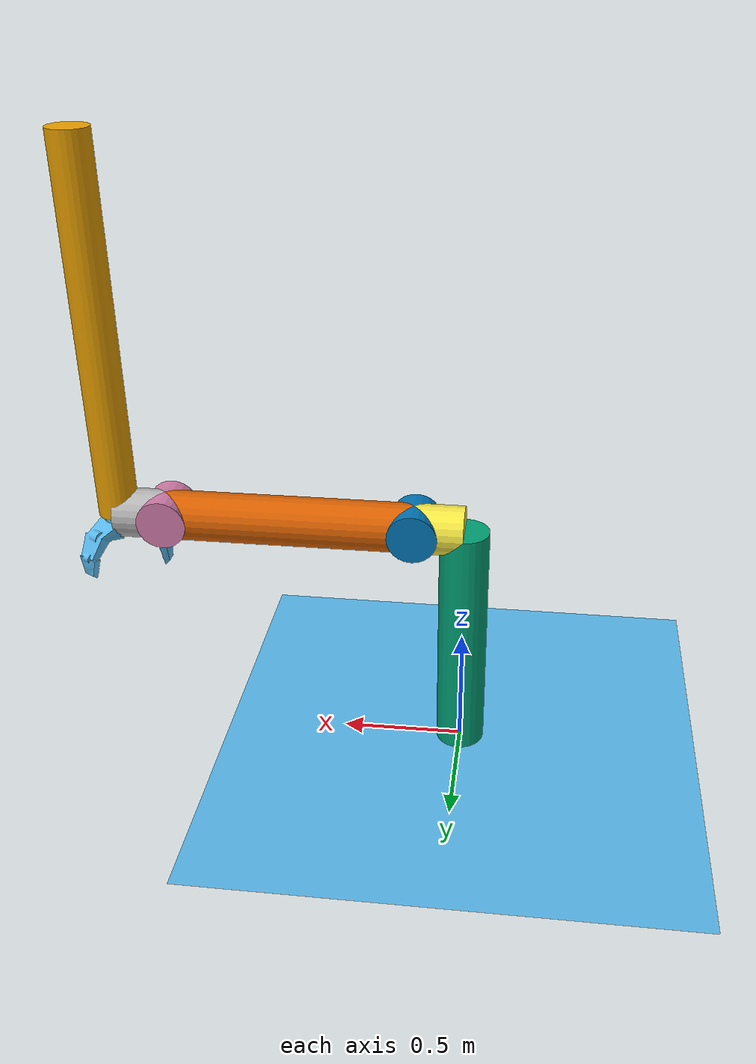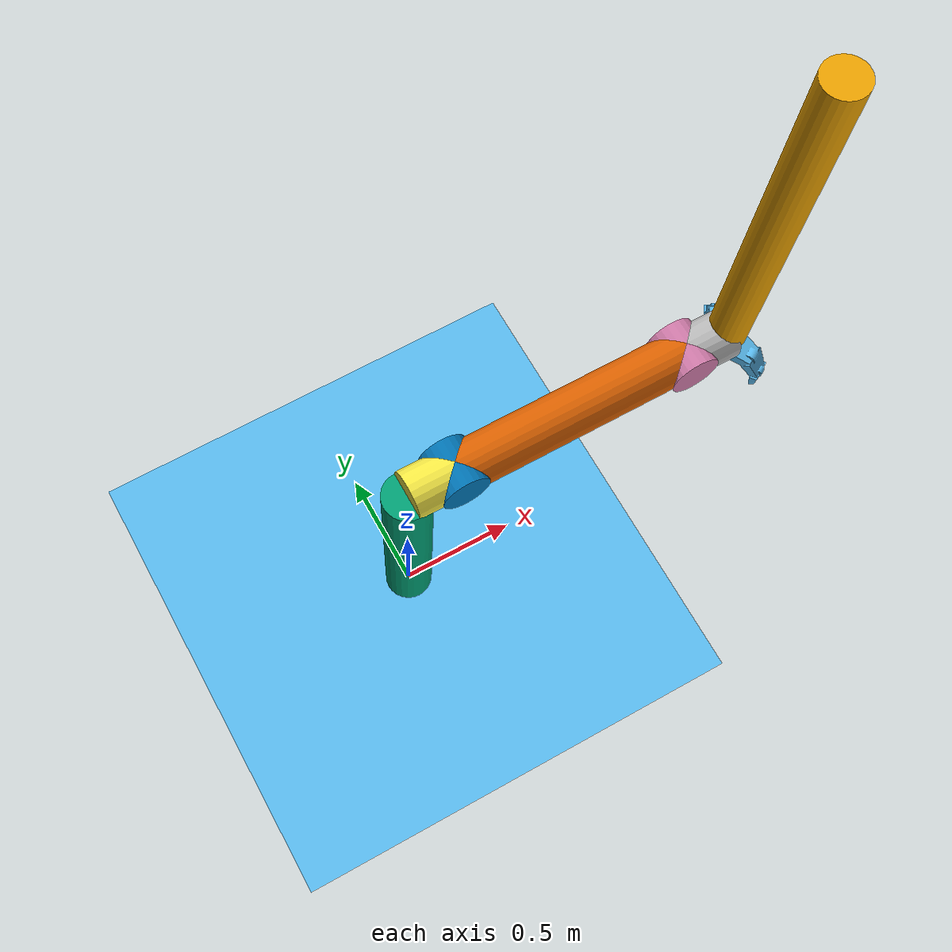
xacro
<?xml version="1.0"?>
<robot xmlns:xacro="http://www.ros.org/wiki/xacro" name="my_robot">
    <xacro:include filename="$(find project_rp)/urdf/r_link.xacro" />
    <xacro:include filename="$(find project_rp)/urdf/p_link.xacro" />
    <xacro:include filename="$(find project_rp)/urdf/f_link.xacro" />
    <xacro:include filename="$(find project_rp)/urdf/base.xacro" />
    <xacro:include filename="$(find project_rp)/urdf/claw.xacro" />
    <xacro:base name="l0" />
    <xacro:r_link prefix="l1" parent="l0" length="1.000000" radius="0.100000" joint_rpy="0 0 0" joint_xyz="0 0 0" link_rpy="0 0 0" link_xyz="0 0 0.500000"/>
    <xacro:f_link prefix="l2" parent="l1" length="0.200000" radius="0.100000" joint_xyz="0 0 0" link_rpy="0 1.570796 0" link_xyz="0.100000 0 1.000000"/>
    <xacro:r_link prefix="l3" parent="l2" length="0.2" radius="0.100000" joint_rpy="1.570796 0 0" joint_xyz="0.200000 0 1.000000" link_rpy="0 0 0" link_xyz="0 0 0.000000"/>
    <xacro:f_link prefix="l4" parent="l3" length="1.000000" radius="0.100000" joint_xyz="0 0 0" link_rpy="0 1.570796 0" link_xyz="0.500000 0 0.000000"/>
    <xacro:r_link prefix="l5" parent="l4" length="0.2" radius="0.100000" joint_rpy="0.000000 0 0" joint_xyz="1.000000 0 0.000000" link_rpy="0 0 0" link_xyz="0 0 0.000000"/>
    <xacro:f_link prefix="l6" parent="l5" length="0.200000" radius="0.100000" joint_xyz="0 0 0" link_rpy="0 1.570796 0" link_xyz="0.100000 0 0.000000"/>
    <xacro:p_link prefix="l7" parent="l6" length="1.500000" radius="0.080000" joint_rpy="1.570796 0 0" joint_xyz="0.200000 0 0.000000" link_rpy="0 0 0" link_xyz="0 0 -0.750000"/>
    <xacro:claw parent="l7" rpy="0 0 0" xyz="0.642000 0 0" scale="0.015000 0.015000 0.015000"/>
    <gazebo>
        <plugin name="gazebo_ros_control" filename="libgazebo_ros_control.so">
            <robotNamespace>/</robotNamespace>
        </plugin>
    </gazebo>
</robot>

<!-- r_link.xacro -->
<robot xmlns:xacro="http://www.ros.org/wiki/xacro" name="my_robot">

<xacro:macro name="r_link" params="prefix parent length radius joint_rpy joint_xyz link_rpy link_xyz">

    <link name="${prefix}">
        <visual>
            <origin rpy="${link_rpy}" xyz="${link_xyz}"/>
            <geometry>
                <cylinder length="${length}" radius="${radius}"/>
            </geometry>
        </visual>
        <inertial>
            <origin rpy="${link_rpy}" xyz="${link_xyz}"/>
            <mass value="1"/>
            <inertia ixx="0.06" ixy="0.0" ixz="0.0" iyy="0.06" iyz="0.0" izz="0.25"/>
        </inertial>
    </link>

    <joint name="${parent}_to_${prefix}" type="continuous">
        <axis xyz="0 0 1"/>
        <parent link="${parent}"/>
        <child link="${prefix}"/>
        <origin rpy="${joint_rpy}" xyz="${joint_xyz}"/>
        <limit effort="300" velocity="1.0"/>
        <dynamics damping="0.5" friction="0.0"/>
    </joint>

    <transmission name="${prefix}_transmission">
        <type>transmission_interface/SimpleTransmission</type>
        <actuator name="${prefix}_motor">
            <mechanicalReduction>1</mechanicalReduction>
        </actuator>
        <joint name="${parent}_to_${prefix}">
            <hardwareInterface>hardware_interface/PositionJointInterface</hardwareInterface>
        </joint>
    </transmission>

</xacro:macro>
</robot>

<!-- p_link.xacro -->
<robot xmlns:xacro="http://www.ros.org/wiki/xacro" name="my_robot">

<xacro:macro name="p_link" params="prefix parent length radius joint_rpy joint_xyz link_rpy link_xyz">

    <link name="${prefix}">
        <visual>
            <origin rpy="${link_rpy}" xyz="${link_xyz}"/>
            <geometry>
                <cylinder length="${length}" radius="${radius}"/>
            </geometry>
        </visual>
        <inertial>
            <origin rpy="${link_rpy}" xyz="${link_xyz}"/>
            <mass value="1"/>
            <inertia ixx="0.06" ixy="0.0" ixz="0.0" iyy="0.06" iyz="0.0" izz="0.25"/>
        </inertial>
    </link>

    <joint name="${parent}_to_${prefix}" type="prismatic">
        <axis xyz="0 0 1"/>
        <parent link="${parent}"/>
        <child link="${prefix}"/>
        <origin rpy="${joint_rpy}" xyz="${joint_xyz}"/> <!-- move the child_frame with respect to parent_frame -->
        <limit upper="${length}" effort="300" velocity="1.0"/>
        <dynamics damping="0.5" friction="0.0"/>
    </joint>

    <transmission name="${prefix}_transmission">
        <type>transmission_interface/SimpleTransmission</type>
        <actuator name="${prefix}_motor">
            <mechanicalReduction>1</mechanicalReduction>
        </actuator>
        <joint name="${parent}_to_${prefix}">
            <hardwareInterface>hardware_interface/PositionJointInterface</hardwareInterface>
        </joint>
    </transmission>

</xacro:macro>
</robot>

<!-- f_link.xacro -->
<robot xmlns:xacro="http://www.ros.org/wiki/xacro" name="my_robot">

<xacro:macro name="f_link" params="prefix parent length radius joint_xyz link_rpy link_xyz">

		<link name="${prefix}">
        <visual>
            <origin rpy="${link_rpy}" xyz="${link_xyz}"/>
            <geometry>
                <cylinder length="${length}" radius="${radius}"/>
            </geometry>
        </visual>
        <inertial>
            <origin rpy="${link_rpy}" xyz="${link_xyz}"/>
            <mass value="1"/>
            <inertia ixx="0.06" ixy="0.0" ixz="0.0" iyy="0.06" iyz="0.0" izz="0.25"/>
        </inertial>
    </link>

    <joint name="${parent}_to_${prefix}" type="fixed">
			<parent link="${parent}"/>
			<child link="${prefix}"/>
			<origin rpy="0 0 0" xyz="${joint_xyz}"/>
			<dynamics damping="0.5" friction="0.0"/>
		</joint>

</xacro:macro>
</robot>

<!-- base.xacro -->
<robot xmlns:xacro="http://www.ros.org/wiki/xacro" name="my_robot">

<xacro:macro name="base" params="name">

		<link name="world"/>
		<joint name="fixed" type="fixed">
			<parent link="world"/>
			<child link="${name}"/>
		</joint>

		<link name="${name}">
        <visual>
        		<origin xyz="0 0 0"/>
            <geometry>
                <box size="2 2 0"/>
            </geometry>
        </visual>
        <collision>
            <geometry>
                <box size="2 2 0"/>
            </geometry>
        </collision>
        <inertial>
            <mass value="1"/>
            <inertia ixx="0.21" ixy="0" ixz="0" iyy="0.27" iyz="0" izz="0.10"/>
        </inertial>
    </link>

</xacro:macro>
</robot>

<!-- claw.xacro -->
<robot xmlns:xacro="http://www.ros.org/wiki/xacro" name="my_robot">

<xacro:macro name="claw" params="parent rpy xyz scale">
	<link name="claw">
        <visual>
            <origin rpy="${rpy}" xyz="${xyz}"/>
            <geometry>
                <mesh filename="package://project_rp/urdf/Claw.stl" scale="${scale}"/>
            </geometry>
        </visual>
    </link>

    <joint name="${parent}_to_claw" type="fixed">
        <parent link="${parent}"/>
        <child link="claw"/>
        <dynamics damping="0.5" friction="0.0"/>
    </joint>

</xacro:macro>
</robot>
